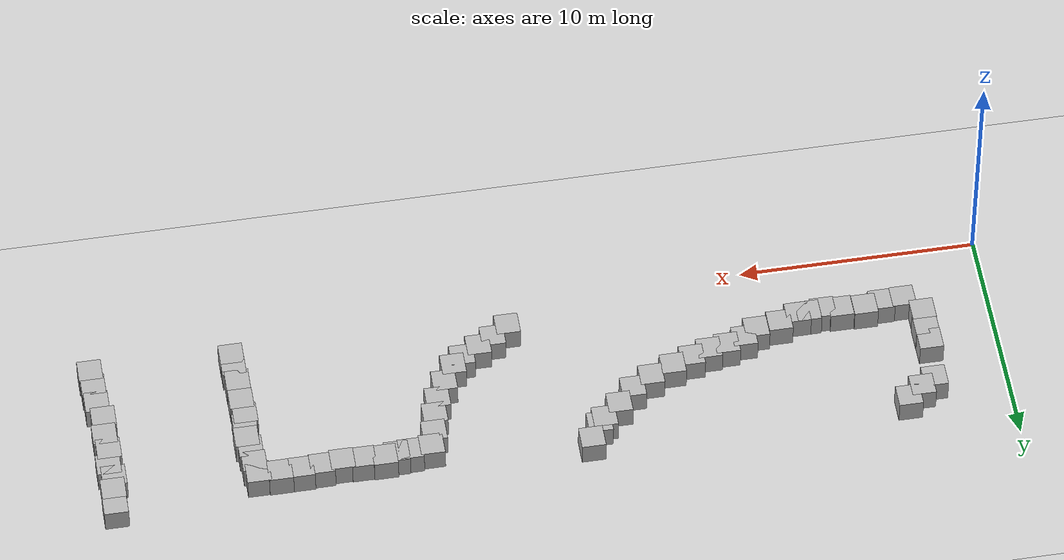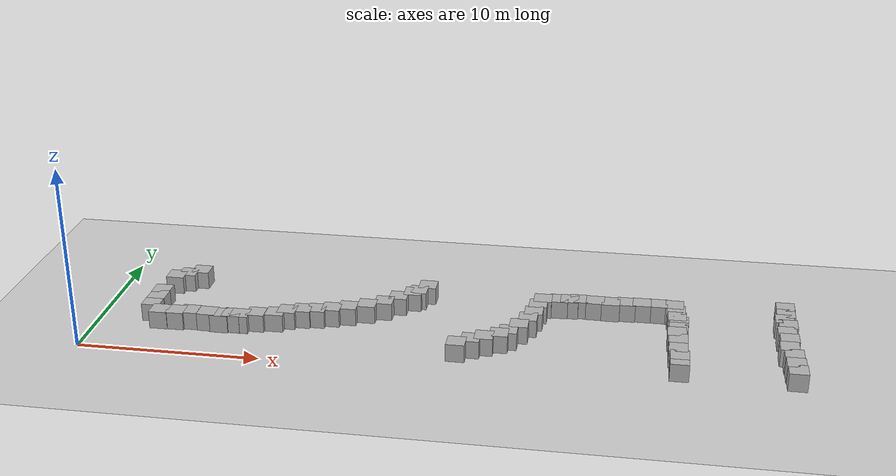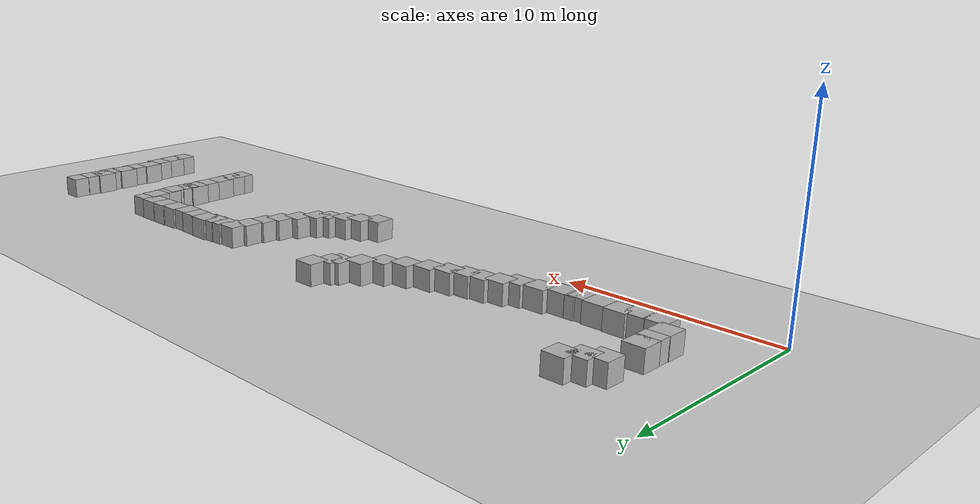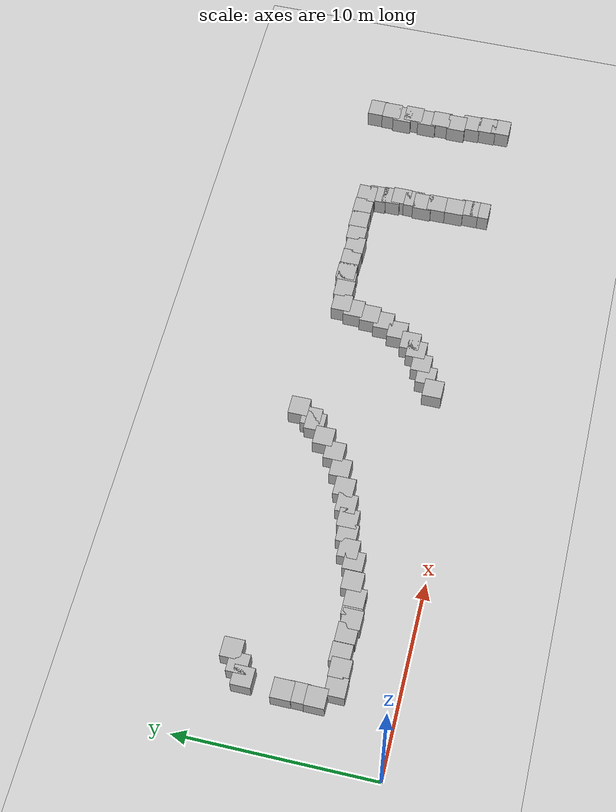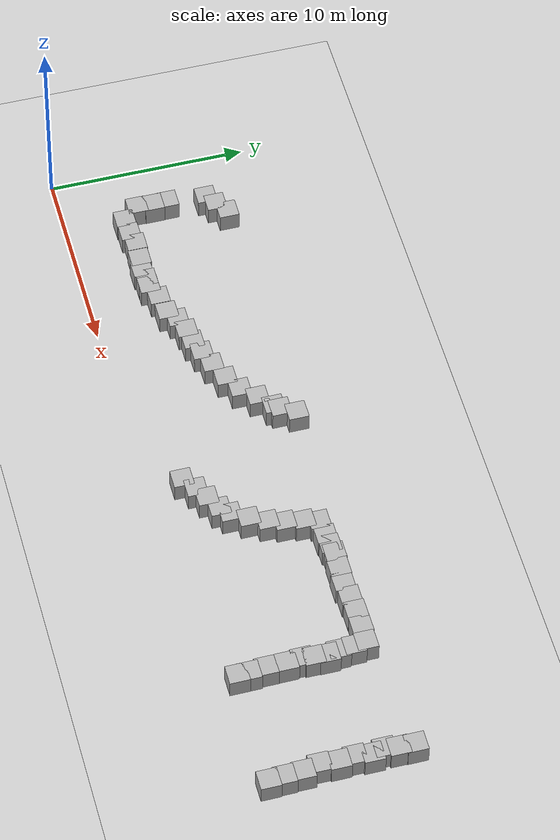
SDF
<sdf version="1.10">
 <world name="empty">
  <model name="ground_plane">
   <static>true</static>
   <link name="link">
    <collision name="collision">
     <geometry><plane><normal>0 0 1</normal><size>100 100</size></plane></geometry>
    </collision>
    <visual name="visual">
     <geometry><plane><normal>0 0 1</normal><size>100 100</size></plane></geometry>
     <material>
      <ambient>0.800000012 0.800000012 0.800000012 1</ambient>
      <diffuse>0.800000012 0.800000012 0.800000012 1</diffuse>
      <specular>0.800000012 0.800000012 0.800000012 1</specular>
     </material>
    </visual>
    <inertial>
     <mass>1</mass>
     <inertia><ixx>1</ixx><ixy>0</ixy><ixz>0</ixz><iyy>1</iyy><iyz>0</iyz><izz>1</izz></inertia>
    </inertial>
   </link>
  </model>
  <model name="box_7_1">
   <pose>2.9451916872459045 3.7643464646409432 0.5 0 0 0</pose>
   <link name="box_link">
    <inertial>
     <inertia><ixx>0.16666</ixx><ixy>0</ixy><ixz>0</ixz><iyy>0.16666</iyy><iyz>0</iyz><izz>0.16666</izz></inertia>
     <mass>1</mass>
    </inertial>
    <collision name="box_collision"><geometry><box><size>1 1 1</size></box></geometry></collision>
    <visual name="box_visual">
     <geometry><box><size>1 1 1</size></box></geometry>
     <material>
      <ambient>0.300000012 0.300000012 0.300000012 1</ambient>
      <diffuse>0.699999988 0.699999988 0.699999988 1</diffuse>
      <specular>1 1 1 1</specular>
     </material>
    </visual>
   </link>
   <static>false</static>
  </model>
  <model name="box_7_2">
   <pose>2.965733301422552 4.6017455559055556 0.5 0 0 0</pose>
   <link name="box_link">
    <inertial>
     <inertia><ixx>0.16666</ixx><ixy>0</ixy><ixz>0</ixz><iyy>0.16666</iyy><iyz>0</iyz><izz>0.16666</izz></inertia>
     <mass>1</mass>
    </inertial>
    <collision name="box_collision"><geometry><box><size>1 1 1</size></box></geometry></collision>
    <visual name="box_visual">
     <geometry><box><size>1 1 1</size></box></geometry>
     <material>
      <ambient>0.300000012 0.300000012 0.300000012 1</ambient>
      <diffuse>0.699999988 0.699999988 0.699999988 1</diffuse>
      <specular>1 1 1 1</specular>
     </material>
    </visual>
   </link>
   <static>false</static>
  </model>
  <model name="box_7_3">
   <pose>2.9526592685858302 5.3668695491442442 0.5 0 0 0</pose>
   <link name="box_link">
    <inertial>
     <inertia><ixx>0.16666</ixx><ixy>0</ixy><ixz>0</ixz><iyy>0.16666</iyy><iyz>0</iyz><izz>0.16666</izz></inertia>
     <mass>1</mass>
    </inertial>
    <collision name="box_collision"><geometry><box><size>1 1 1</size></box></geometry></collision>
    <visual name="box_visual">
     <geometry><box><size>1 1 1</size></box></geometry>
     <material>
      <ambient>0.300000012 0.300000012 0.300000012 1</ambient>
      <diffuse>0.699999988 0.699999988 0.699999988 1</diffuse>
      <specular>1 1 1 1</specular>
     </material>
    </visual>
   </link>
   <static>false</static>
  </model>
  <model name="box_7_94">
   <pose>4.3659326780835501 8.1476697915858693 0.5 0 0 0</pose>
   <link name="box_link">
    <inertial>
     <inertia><ixx>0.16666</ixx><ixy>0</ixy><ixz>0</ixz><iyy>0.16666</iyy><iyz>0</iyz><izz>0.16666</izz></inertia>
     <mass>1</mass>
    </inertial>
    <collision name="box_collision"><geometry><box><size>1 1 1</size></box></geometry></collision>
    <visual name="box_visual">
     <geometry><box><size>1 1 1</size></box></geometry>
     <material>
      <ambient>0.300000012 0.300000012 0.300000012 1</ambient>
      <diffuse>0.699999988 0.699999988 0.699999988 1</diffuse>
      <specular>1 1 1 1</specular>
     </material>
    </visual>
   </link>
   <static>false</static>
  </model>
  <model name="box_7_95">
   <pose>3.7270725030914456 7.6885849794221492 0.5 0 0 0</pose>
   <link name="box_link">
    <inertial>
     <inertia><ixx>0.16666</ixx><ixy>0</ixy><ixz>0</ixz><iyy>0.16666</iyy><iyz>0</iyz><izz>0.16666</izz></inertia>
     <mass>1</mass>
    </inertial>
    <collision name="box_collision"><geometry><box><size>1 1 1</size></box></geometry></collision>
    <visual name="box_visual">
     <geometry><box><size>1 1 1</size></box></geometry>
     <material>
      <ambient>0.300000012 0.300000012 0.300000012 1</ambient>
      <diffuse>0.699999988 0.699999988 0.699999988 1</diffuse>
      <specular>1 1 1 1</specular>
     </material>
    </visual>
   </link>
   <static>false</static>
  </model>
  <model name="box_7_96">
   <pose>3.1422916219437074 7.3198556125772312 0.5 0 0 0</pose>
   <link name="box_link">
    <inertial>
     <inertia><ixx>0.16666</ixx><ixy>0</ixy><ixz>0</ixz><iyy>0.16666</iyy><iyz>0</iyz><izz>0.16666</izz></inertia>
     <mass>1</mass>
    </inertial>
    <collision name="box_collision"><geometry><box><size>1 1 1</size></box></geometry></collision>
    <visual name="box_visual">
     <geometry><box><size>1 1 1</size></box></geometry>
     <material>
      <ambient>0.300000012 0.300000012 0.300000012 1</ambient>
      <diffuse>0.699999988 0.699999988 0.699999988 1</diffuse>
      <specular>1 1 1 1</specular>
     </material>
    </visual>
   </link>
   <static>false</static>
  </model>
  <model name="box_7_97">
   <pose>3.6419311580413307 2.9611827537690782 0.5 0 0 0</pose>
   <link name="box_link">
    <inertial>
     <inertia><ixx>0.16666</ixx><ixy>0</ixy><ixz>0</ixz><iyy>0.16666</iyy><iyz>0</iyz><izz>0.16666</izz></inertia>
     <mass>1</mass>
    </inertial>
    <collision name="box_collision"><geometry><box><size>1 1 1</size></box></geometry></collision>
    <visual name="box_visual">
     <geometry><box><size>1 1 1</size></box></geometry>
     <material>
      <ambient>0.300000012 0.300000012 0.300000012 1</ambient>
      <diffuse>0.699999988 0.699999988 0.699999988 1</diffuse>
      <specular>1 1 1 1</specular>
     </material>
    </visual>
   </link>
   <static>false</static>
  </model>
  <model name="box_7_98">
   <pose>4.5539337820052861 2.9957458890182149 0.5 0 0 0</pose>
   <link name="box_link">
    <inertial>
     <inertia><ixx>0.16666</ixx><ixy>0</ixy><ixz>0</ixz><iyy>0.16666</iyy><iyz>0</iyz><izz>0.16666</izz></inertia>
     <mass>1</mass>
    </inertial>
    <collision name="box_collision"><geometry><box><size>1 1 1</size></box></geometry></collision>
    <visual name="box_visual">
     <geometry><box><size>1 1 1</size></box></geometry>
     <material>
      <ambient>0.300000012 0.300000012 0.300000012 1</ambient>
      <diffuse>0.699999988 0.699999988 0.699999988 1</diffuse>
      <specular>1 1 1 1</specular>
     </material>
    </visual>
   </link>
   <static>false</static>
  </model>
  <model name="box_7_99">
   <pose>5.2911898608731125 3.1301353618408641 0.5 0 0 0</pose>
   <link name="box_link">
    <inertial>
     <inertia><ixx>0.16666</ixx><ixy>0</ixy><ixz>0</ixz><iyy>0.16666</iyy><iyz>0</iyz><izz>0.16666</izz></inertia>
     <mass>1</mass>
    </inertial>
    <collision name="box_collision"><geometry><box><size>1 1 1</size></box></geometry></collision>
    <visual name="box_visual">
     <geometry><box><size>1 1 1</size></box></geometry>
     <material>
      <ambient>0.300000012 0.300000012 0.300000012 1</ambient>
      <diffuse>0.699999988 0.699999988 0.699999988 1</diffuse>
      <specular>1 1 1 1</specular>
     </material>
    </visual>
   </link>
   <static>false</static>
  </model>
  <model name="box_7_100">
   <pose>6.303454348619991 3.0903157442481266 0.5 0 0 0</pose>
   <link name="box_link">
    <inertial>
     <inertia><ixx>0.16666</ixx><ixy>0</ixy><ixz>0</ixz><iyy>0.16666</iyy><iyz>0</iyz><izz>0.16666</izz></inertia>
     <mass>1</mass>
    </inertial>
    <collision name="box_collision"><geometry><box><size>1 1 1</size></box></geometry></collision>
    <visual name="box_visual">
     <geometry><box><size>1 1 1</size></box></geometry>
     <material>
      <ambient>0.300000012 0.300000012 0.300000012 1</ambient>
      <diffuse>0.699999988 0.699999988 0.699999988 1</diffuse>
      <specular>1 1 1 1</specular>
     </material>
    </visual>
   </link>
   <static>false</static>
  </model>
  <model name="box_7_101">
   <pose>7.045741161222594 3.0222316102239555 0.5 0 0 0</pose>
   <link name="box_link">
    <inertial>
     <inertia><ixx>0.16666</ixx><ixy>0</ixy><ixz>0</ixz><iyy>0.16666</iyy><iyz>0</iyz><izz>0.16666</izz></inertia>
     <mass>1</mass>
    </inertial>
    <collision name="box_collision"><geometry><box><size>1 1 1</size></box></geometry></collision>
    <visual name="box_visual">
     <geometry><box><size>1 1 1</size></box></geometry>
     <material>
      <ambient>0.300000012 0.300000012 0.300000012 1</ambient>
      <diffuse>0.699999988 0.699999988 0.699999988 1</diffuse>
      <specular>1 1 1 1</specular>
     </material>
    </visual>
   </link>
   <static>false</static>
  </model>
  <model name="box_7_305">
   <pose>37.440460424222252 7.6366148769680926 0.5 0 0 0</pose>
   <link name="box_link">
    <inertial>
     <inertia><ixx>0.16666</ixx><ixy>0</ixy><ixz>0</ixz><iyy>0.16666</iyy><iyz>0</iyz><izz>0.16666</izz></inertia>
     <mass>1</mass>
    </inertial>
    <collision name="box_collision"><geometry><box><size>1 1 1</size></box></geometry></collision>
    <visual name="box_visual">
     <geometry><box><size>1 1 1</size></box></geometry>
     <material>
      <ambient>0.300000012 0.300000012 0.300000012 1</ambient>
      <diffuse>0.699999988 0.699999988 0.699999988 1</diffuse>
      <specular>1 1 1 1</specular>
     </material>
    </visual>
   </link>
   <static>false</static>
  </model>
  <model name="box_7_306">
   <pose>37.4631118531262 8.4384913370086299 0.5 0 0 0</pose>
   <link name="box_link">
    <inertial>
     <inertia><ixx>0.16666</ixx><ixy>0</ixy><ixz>0</ixz><iyy>0.16666</iyy><iyz>0</iyz><izz>0.16666</izz></inertia>
     <mass>1</mass>
    </inertial>
    <collision name="box_collision"><geometry><box><size>1 1 1</size></box></geometry></collision>
    <visual name="box_visual">
     <geometry><box><size>1 1 1</size></box></geometry>
     <material>
      <ambient>0.300000012 0.300000012 0.300000012 1</ambient>
      <diffuse>0.699999988 0.699999988 0.699999988 1</diffuse>
      <specular>1 1 1 1</specular>
     </material>
    </visual>
   </link>
   <static>false</static>
  </model>
  <model name="box_7_395">
   <pose>17.664533526017753 8.1815986023374911 0.5 0 0 0</pose>
   <link name="box_link">
    <inertial>
     <inertia><ixx>0.16666</ixx><ixy>0</ixy><ixz>0</ixz><iyy>0.16666</iyy><iyz>0</iyz><izz>0.16666</izz></inertia>
     <mass>1</mass>
    </inertial>
    <collision name="box_collision"><geometry><box><size>1 1 1</size></box></geometry></collision>
    <visual name="box_visual">
     <geometry><box><size>1 1 1</size></box></geometry>
     <material>
      <ambient>0.300000012 0.300000012 0.300000012 1</ambient>
      <diffuse>0.699999988 0.699999988 0.699999988 1</diffuse>
      <specular>1 1 1 1</specular>
     </material>
    </visual>
   </link>
   <static>false</static>
  </model>
  <model name="box_7_396">
   <pose>8.1343607769292703 3.1035054262866613 0.5 0 0 0</pose>
   <link name="box_link">
    <inertial>
     <inertia><ixx>0.16666</ixx><ixy>0</ixy><ixz>0</ixz><iyy>0.16666</iyy><iyz>0</iyz><izz>0.16666</izz></inertia>
     <mass>1</mass>
    </inertial>
    <collision name="box_collision"><geometry><box><size>1 1 1</size></box></geometry></collision>
    <visual name="box_visual">
     <geometry><box><size>1 1 1</size></box></geometry>
     <material>
      <ambient>0.300000012 0.300000012 0.300000012 1</ambient>
      <diffuse>0.699999988 0.699999988 0.699999988 1</diffuse>
      <specular>1 1 1 1</specular>
     </material>
    </visual>
   </link>
   <static>false</static>
  </model>
  <model name="box_7_397">
   <pose>7.6828157197887954 3.0976413553826454 0.5 0 0 0</pose>
   <link name="box_link">
    <inertial>
     <inertia><ixx>0.16666</ixx><ixy>0</ixy><ixz>0</ixz><iyy>0.16666</iyy><iyz>0</iyz><izz>0.16666</izz></inertia>
     <mass>1</mass>
    </inertial>
    <collision name="box_collision"><geometry><box><size>1 1 1</size></box></geometry></collision>
    <visual name="box_visual">
     <geometry><box><size>1 1 1</size></box></geometry>
     <material>
      <ambient>0.300000012 0.300000012 0.300000012 1</ambient>
      <diffuse>0.699999988 0.699999988 0.699999988 1</diffuse>
      <specular>1 1 1 1</specular>
     </material>
    </visual>
   </link>
   <static>false</static>
  </model>
  <model name="box_7_398">
   <pose>8.9569749558699741 3.4073686784278951 0.5 0 0 0</pose>
   <link name="box_link">
    <inertial>
     <inertia><ixx>0.16666</ixx><ixy>0</ixy><ixz>0</ixz><iyy>0.16666</iyy><iyz>0</iyz><izz>0.16666</izz></inertia>
     <mass>1</mass>
    </inertial>
    <collision name="box_collision"><geometry><box><size>1 1 1</size></box></geometry></collision>
    <visual name="box_visual">
     <geometry><box><size>1 1 1</size></box></geometry>
     <material>
      <ambient>0.300000012 0.300000012 0.300000012 1</ambient>
      <diffuse>0.699999988 0.699999988 0.699999988 1</diffuse>
      <specular>1 1 1 1</specular>
     </material>
    </visual>
   </link>
   <static>false</static>
  </model>
  <model name="box_7_399">
   <pose>9.9765563699773931 3.5831603559456653 0.5 0 0 0</pose>
   <link name="box_link">
    <inertial>
     <inertia><ixx>0.16666</ixx><ixy>0</ixy><ixz>0</ixz><iyy>0.16666</iyy><iyz>0</iyz><izz>0.16666</izz></inertia>
     <mass>1</mass>
    </inertial>
    <collision name="box_collision"><geometry><box><size>1 1 1</size></box></geometry></collision>
    <visual name="box_visual">
     <geometry><box><size>1 1 1</size></box></geometry>
     <material>
      <ambient>0.300000012 0.300000012 0.300000012 1</ambient>
      <diffuse>0.699999988 0.699999988 0.699999988 1</diffuse>
      <specular>1 1 1 1</specular>
     </material>
    </visual>
   </link>
   <static>false</static>
  </model>
  <model name="box_7_400">
   <pose>10.552735566277573 3.970929438802866 0.5 0 0 0</pose>
   <link name="box_link">
    <inertial>
     <inertia><ixx>0.16666</ixx><ixy>0</ixy><ixz>0</ixz><iyy>0.16666</iyy><iyz>0</iyz><izz>0.16666</izz></inertia>
     <mass>1</mass>
    </inertial>
    <collision name="box_collision"><geometry><box><size>1 1 1</size></box></geometry></collision>
    <visual name="box_visual">
     <geometry><box><size>1 1 1</size></box></geometry>
     <material>
      <ambient>0.300000012 0.300000012 0.300000012 1</ambient>
      <diffuse>0.699999988 0.699999988 0.699999988 1</diffuse>
      <specular>1 1 1 1</specular>
     </material>
    </visual>
   </link>
   <static>false</static>
  </model>
  <model name="box_7_401">
   <pose>11.334116970539473 4.2276456298445098 0.5 0 0 0</pose>
   <link name="box_link">
    <inertial>
     <inertia><ixx>0.16666</ixx><ixy>0</ixy><ixz>0</ixz><iyy>0.16666</iyy><iyz>0</iyz><izz>0.16666</izz></inertia>
     <mass>1</mass>
    </inertial>
    <collision name="box_collision"><geometry><box><size>1 1 1</size></box></geometry></collision>
    <visual name="box_visual">
     <geometry><box><size>1 1 1</size></box></geometry>
     <material>
      <ambient>0.300000012 0.300000012 0.300000012 1</ambient>
      <diffuse>0.699999988 0.699999988 0.699999988 1</diffuse>
      <specular>1 1 1 1</specular>
     </material>
    </visual>
   </link>
   <static>false</static>
  </model>
  <model name="box_7_402">
   <pose>12.112384707012668 4.3622336342814023 0.5 0 0 0</pose>
   <link name="box_link">
    <inertial>
     <inertia><ixx>0.16666</ixx><ixy>0</ixy><ixz>0</ixz><iyy>0.16666</iyy><iyz>0</iyz><izz>0.16666</izz></inertia>
     <mass>1</mass>
    </inertial>
    <collision name="box_collision"><geometry><box><size>1 1 1</size></box></geometry></collision>
    <visual name="box_visual">
     <geometry><box><size>1 1 1</size></box></geometry>
     <material>
      <ambient>0.300000012 0.300000012 0.300000012 1</ambient>
      <diffuse>0.699999988 0.699999988 0.699999988 1</diffuse>
      <specular>1 1 1 1</specular>
     </material>
    </visual>
   </link>
   <static>false</static>
  </model>
  <model name="box_7_403">
   <pose>12.882261820251191 4.6211170989841879 0.5 0 0 0</pose>
   <link name="box_link">
    <inertial>
     <inertia><ixx>0.16666</ixx><ixy>0</ixy><ixz>0</ixz><iyy>0.16666</iyy><iyz>0</iyz><izz>0.16666</izz></inertia>
     <mass>1</mass>
    </inertial>
    <collision name="box_collision"><geometry><box><size>1 1 1</size></box></geometry></collision>
    <visual name="box_visual">
     <geometry><box><size>1 1 1</size></box></geometry>
     <material>
      <ambient>0.300000012 0.300000012 0.300000012 1</ambient>
      <diffuse>0.699999988 0.699999988 0.699999988 1</diffuse>
      <specular>1 1 1 1</specular>
     </material>
    </visual>
   </link>
   <static>false</static>
  </model>
  <model name="box_7_404">
   <pose>13.738908531443585 4.9264547906110696 0.5 0 0 0</pose>
   <link name="box_link">
    <inertial>
     <inertia><ixx>0.16666</ixx><ixy>0</ixy><ixz>0</ixz><iyy>0.16666</iyy><iyz>0</iyz><izz>0.16666</izz></inertia>
     <mass>1</mass>
    </inertial>
    <collision name="box_collision"><geometry><box><size>1 1 1</size></box></geometry></collision>
    <visual name="box_visual">
     <geometry><box><size>1 1 1</size></box></geometry>
     <material>
      <ambient>0.300000012 0.300000012 0.300000012 1</ambient>
      <diffuse>0.699999988 0.699999988 0.699999988 1</diffuse>
      <specular>1 1 1 1</specular>
     </material>
    </visual>
   </link>
   <static>false</static>
  </model>
  <model name="box_7_405">
   <pose>14.717224208026501 5.3482656448340844 0.5 0 0 0</pose>
   <link name="box_link">
    <inertial>
     <inertia><ixx>0.16666</ixx><ixy>0</ixy><ixz>0</ixz><iyy>0.16666</iyy><iyz>0</iyz><izz>0.16666</izz></inertia>
     <mass>1</mass>
    </inertial>
    <collision name="box_collision"><geometry><box><size>1 1 1</size></box></geometry></collision>
    <visual name="box_visual">
     <geometry><box><size>1 1 1</size></box></geometry>
     <material>
      <ambient>0.300000012 0.300000012 0.300000012 1</ambient>
      <diffuse>0.699999988 0.699999988 0.699999988 1</diffuse>
      <specular>1 1 1 1</specular>
     </material>
    </visual>
   </link>
   <static>false</static>
  </model>
  <model name="box_7_406">
   <pose>15.572953273002637 5.8556671956200219 0.5 0 0 0</pose>
   <link name="box_link">
    <inertial>
     <inertia><ixx>0.16666</ixx><ixy>0</ixy><ixz>0</ixz><iyy>0.16666</iyy><iyz>0</iyz><izz>0.16666</izz></inertia>
     <mass>1</mass>
    </inertial>
    <collision name="box_collision"><geometry><box><size>1 1 1</size></box></geometry></collision>
    <visual name="box_visual">
     <geometry><box><size>1 1 1</size></box></geometry>
     <material>
      <ambient>0.300000012 0.300000012 0.300000012 1</ambient>
      <diffuse>0.699999988 0.699999988 0.699999988 1</diffuse>
      <specular>1 1 1 1</specular>
     </material>
    </visual>
   </link>
   <static>false</static>
  </model>
  <model name="box_7_407">
   <pose>16.264659554783368 6.5701987215159363 0.5 0 0 0</pose>
   <link name="box_link">
    <inertial>
     <inertia><ixx>0.16666</ixx><ixy>0</ixy><ixz>0</ixz><iyy>0.16666</iyy><iyz>0</iyz><izz>0.16666</izz></inertia>
     <mass>1</mass>
    </inertial>
    <collision name="box_collision"><geometry><box><size>1 1 1</size></box></geometry></collision>
    <visual name="box_visual">
     <geometry><box><size>1 1 1</size></box></geometry>
     <material>
      <ambient>0.300000012 0.300000012 0.300000012 1</ambient>
      <diffuse>0.699999988 0.699999988 0.699999988 1</diffuse>
      <specular>1 1 1 1</specular>
     </material>
    </visual>
   </link>
   <static>false</static>
  </model>
  <model name="box_7_408">
   <pose>16.988810794996908 7.1974962581197275 0.5 0 0 0</pose>
   <link name="box_link">
    <inertial>
     <inertia><ixx>0.16666</ixx><ixy>0</ixy><ixz>0</ixz><iyy>0.16666</iyy><iyz>0</iyz><izz>0.16666</izz></inertia>
     <mass>1</mass>
    </inertial>
    <collision name="box_collision"><geometry><box><size>1 1 1</size></box></geometry></collision>
    <visual name="box_visual">
     <geometry><box><size>1 1 1</size></box></geometry>
     <material>
      <ambient>0.300000012 0.300000012 0.300000012 1</ambient>
      <diffuse>0.699999988 0.699999988 0.699999988 1</diffuse>
      <specular>1 1 1 1</specular>
     </material>
    </visual>
   </link>
   <static>false</static>
  </model>
  <model name="box_7_409">
   <pose>17.23409692357183 7.4534245880687084 0.5 0 0 0</pose>
   <link name="box_link">
    <inertial>
     <inertia><ixx>0.16666</ixx><ixy>0</ixy><ixz>0</ixz><iyy>0.16666</iyy><iyz>0</iyz><izz>0.16666</izz></inertia>
     <mass>1</mass>
    </inertial>
    <collision name="box_collision"><geometry><box><size>1 1 1</size></box></geometry></collision>
    <visual name="box_visual">
     <geometry><box><size>1 1 1</size></box></geometry>
     <material>
      <ambient>0.300000012 0.300000012 0.300000012 1</ambient>
      <diffuse>0.699999988 0.699999988 0.699999988 1</diffuse>
      <specular>1 1 1 1</specular>
     </material>
    </visual>
   </link>
   <static>false</static>
  </model>
  <model name="box_7_427">
   <pose>20.199684678097125 1.7672901390244018 0.5 0 0 0</pose>
   <link name="box_link">
    <inertial>
     <inertia><ixx>0.16666</ixx><ixy>0</ixy><ixz>0</ixz><iyy>0.16666</iyy><iyz>0</iyz><izz>0.16666</izz></inertia>
     <mass>1</mass>
    </inertial>
    <collision name="box_collision"><geometry><box><size>1 1 1</size></box></geometry></collision>
    <visual name="box_visual">
     <geometry><box><size>1 1 1</size></box></geometry>
     <material>
      <ambient>0.300000012 0.300000012 0.300000012 1</ambient>
      <diffuse>0.699999988 0.699999988 0.699999988 1</diffuse>
      <specular>1 1 1 1</specular>
     </material>
    </visual>
   </link>
   <static>false</static>
  </model>
  <model name="box_7_428">
   <pose>20.894623670826967 2.2734121690811806 0.5 0 0 0</pose>
   <link name="box_link">
    <inertial>
     <inertia><ixx>0.16666</ixx><ixy>0</ixy><ixz>0</ixz><iyy>0.16666</iyy><iyz>0</iyz><izz>0.16666</izz></inertia>
     <mass>1</mass>
    </inertial>
    <collision name="box_collision"><geometry><box><size>1 1 1</size></box></geometry></collision>
    <visual name="box_visual">
     <geometry><box><size>1 1 1</size></box></geometry>
     <material>
      <ambient>0.300000012 0.300000012 0.300000012 1</ambient>
      <diffuse>0.699999988 0.699999988 0.699999988 1</diffuse>
      <specular>1 1 1 1</specular>
     </material>
    </visual>
   </link>
   <static>false</static>
  </model>
  <model name="box_7_429">
   <pose>21.556352829939438 2.6529421693887798 0.5 0 0 0</pose>
   <link name="box_link">
    <inertial>
     <inertia><ixx>0.16666</ixx><ixy>0</ixy><ixz>0</ixz><iyy>0.16666</iyy><iyz>0</iyz><izz>0.16666</izz></inertia>
     <mass>1</mass>
    </inertial>
    <collision name="box_collision"><geometry><box><size>1 1 1</size></box></geometry></collision>
    <visual name="box_visual">
     <geometry><box><size>1 1 1</size></box></geometry>
     <material>
      <ambient>0.300000012 0.300000012 0.300000012 1</ambient>
      <diffuse>0.699999988 0.699999988 0.699999988 1</diffuse>
      <specular>1 1 1 1</specular>
     </material>
    </visual>
   </link>
   <static>false</static>
  </model>
  <model name="box_7_430">
   <pose>22.3016997303666 3.0753167565205635 0.5 0 0 0</pose>
   <link name="box_link">
    <inertial>
     <inertia><ixx>0.16666</ixx><ixy>0</ixy><ixz>0</ixz><iyy>0.16666</iyy><iyz>0</iyz><izz>0.16666</izz></inertia>
     <mass>1</mass>
    </inertial>
    <collision name="box_collision"><geometry><box><size>1 1 1</size></box></geometry></collision>
    <visual name="box_visual">
     <geometry><box><size>1 1 1</size></box></geometry>
     <material>
      <ambient>0.300000012 0.300000012 0.300000012 1</ambient>
      <diffuse>0.699999988 0.699999988 0.699999988 1</diffuse>
      <specular>1 1 1 1</specular>
     </material>
    </visual>
   </link>
   <static>false</static>
  </model>
  <model name="box_7_431">
   <pose>22.743677408761819 3.4908802564331225 0.5 0 0 0</pose>
   <link name="box_link">
    <inertial>
     <inertia><ixx>0.16666</ixx><ixy>0</ixy><ixz>0</ixz><iyy>0.16666</iyy><iyz>0</iyz><izz>0.16666</izz></inertia>
     <mass>1</mass>
    </inertial>
    <collision name="box_collision"><geometry><box><size>1 1 1</size></box></geometry></collision>
    <visual name="box_visual">
     <geometry><box><size>1 1 1</size></box></geometry>
     <material>
      <ambient>0.300000012 0.300000012 0.300000012 1</ambient>
      <diffuse>0.699999988 0.699999988 0.699999988 1</diffuse>
      <specular>1 1 1 1</specular>
     </material>
    </visual>
   </link>
   <static>false</static>
  </model>
  <model name="box_7_432">
   <pose>23.238756854556129 4.2814625628895495 0.5 0 0 0</pose>
   <link name="box_link">
    <inertial>
     <inertia><ixx>0.16666</ixx><ixy>0</ixy><ixz>0</ixz><iyy>0.16666</iyy><iyz>0</iyz><izz>0.16666</izz></inertia>
     <mass>1</mass>
    </inertial>
    <collision name="box_collision"><geometry><box><size>1 1 1</size></box></geometry></collision>
    <visual name="box_visual">
     <geometry><box><size>1 1 1</size></box></geometry>
     <material>
      <ambient>0.300000012 0.300000012 0.300000012 1</ambient>
      <diffuse>0.699999988 0.699999988 0.699999988 1</diffuse>
      <specular>1 1 1 1</specular>
     </material>
    </visual>
   </link>
   <static>false</static>
  </model>
  <model name="box_7_433">
   <pose>23.642774890461201 5.1058758698945681 0.5 0 0 0</pose>
   <link name="box_link">
    <inertial>
     <inertia><ixx>0.16666</ixx><ixy>0</ixy><ixz>0</ixz><iyy>0.16666</iyy><iyz>0</iyz><izz>0.16666</izz></inertia>
     <mass>1</mass>
    </inertial>
    <collision name="box_collision"><geometry><box><size>1 1 1</size></box></geometry></collision>
    <visual name="box_visual">
     <geometry><box><size>1 1 1</size></box></geometry>
     <material>
      <ambient>0.300000012 0.300000012 0.300000012 1</ambient>
      <diffuse>0.699999988 0.699999988 0.699999988 1</diffuse>
      <specular>1 1 1 1</specular>
     </material>
    </visual>
   </link>
   <static>false</static>
  </model>
  <model name="box_7_434">
   <pose>23.883074049152135 5.8877770233360005 0.5 0 0 0</pose>
   <link name="box_link">
    <inertial>
     <inertia><ixx>0.16666</ixx><ixy>0</ixy><ixz>0</ixz><iyy>0.16666</iyy><iyz>0</iyz><izz>0.16666</izz></inertia>
     <mass>1</mass>
    </inertial>
    <collision name="box_collision"><geometry><box><size>1 1 1</size></box></geometry></collision>
    <visual name="box_visual">
     <geometry><box><size>1 1 1</size></box></geometry>
     <material>
      <ambient>0.300000012 0.300000012 0.300000012 1</ambient>
      <diffuse>0.699999988 0.699999988 0.699999988 1</diffuse>
      <specular>1 1 1 1</specular>
     </material>
    </visual>
   </link>
   <static>false</static>
  </model>
  <model name="box_7_435">
   <pose>24.041833040851692 6.7900471700155496 0.5 0 0 0</pose>
   <link name="box_link">
    <inertial>
     <inertia><ixx>0.16666</ixx><ixy>0</ixy><ixz>0</ixz><iyy>0.16666</iyy><iyz>0</iyz><izz>0.16666</izz></inertia>
     <mass>1</mass>
    </inertial>
    <collision name="box_collision"><geometry><box><size>1 1 1</size></box></geometry></collision>
    <visual name="box_visual">
     <geometry><box><size>1 1 1</size></box></geometry>
     <material>
      <ambient>0.300000012 0.300000012 0.300000012 1</ambient>
      <diffuse>0.699999988 0.699999988 0.699999988 1</diffuse>
      <specular>1 1 1 1</specular>
     </material>
    </visual>
   </link>
   <static>false</static>
  </model>
  <model name="box_7_436">
   <pose>24.244359623911826 7.4848904556025779 0.5 0 0 0</pose>
   <link name="box_link">
    <inertial>
     <inertia><ixx>0.16666</ixx><ixy>0</ixy><ixz>0</ixz><iyy>0.16666</iyy><iyz>0</iyz><izz>0.16666</izz></inertia>
     <mass>1</mass>
    </inertial>
    <collision name="box_collision"><geometry><box><size>1 1 1</size></box></geometry></collision>
    <visual name="box_visual">
     <geometry><box><size>1 1 1</size></box></geometry>
     <material>
      <ambient>0.300000012 0.300000012 0.300000012 1</ambient>
      <diffuse>0.699999988 0.699999988 0.699999988 1</diffuse>
      <specular>1 1 1 1</specular>
     </material>
    </visual>
   </link>
   <static>false</static>
  </model>
  <model name="box_7_437">
   <pose>25.135313976050675 7.5753298337541439 0.5 0 0 0</pose>
   <link name="box_link">
    <inertial>
     <inertia><ixx>0.16666</ixx><ixy>0</ixy><ixz>0</ixz><iyy>0.16666</iyy><iyz>0</iyz><izz>0.16666</izz></inertia>
     <mass>1</mass>
    </inertial>
    <collision name="box_collision"><geometry><box><size>1 1 1</size></box></geometry></collision>
    <visual name="box_visual">
     <geometry><box><size>1 1 1</size></box></geometry>
     <material>
      <ambient>0.300000012 0.300000012 0.300000012 1</ambient>
      <diffuse>0.699999988 0.699999988 0.699999988 1</diffuse>
      <specular>1 1 1 1</specular>
     </material>
    </visual>
   </link>
   <static>false</static>
  </model>
  <model name="box_7_438">
   <pose>26.229892713001782 7.7095757859094904 0.5 0 0 0</pose>
   <link name="box_link">
    <inertial>
     <inertia><ixx>0.16666</ixx><ixy>0</ixy><ixz>0</ixz><iyy>0.16666</iyy><iyz>0</iyz><izz>0.16666</izz></inertia>
     <mass>1</mass>
    </inertial>
    <collision name="box_collision"><geometry><box><size>1 1 1</size></box></geometry></collision>
    <visual name="box_visual">
     <geometry><box><size>1 1 1</size></box></geometry>
     <material>
      <ambient>0.300000012 0.300000012 0.300000012 1</ambient>
      <diffuse>0.699999988 0.699999988 0.699999988 1</diffuse>
      <specular>1 1 1 1</specular>
     </material>
    </visual>
   </link>
   <static>false</static>
  </model>
  <model name="box_7_439">
   <pose>25.711330983790464 7.6189697231081634 0.5 0 0 0</pose>
   <link name="box_link">
    <inertial>
     <inertia><ixx>0.16666</ixx><ixy>0</ixy><ixz>0</ixz><iyy>0.16666</iyy><iyz>0</iyz><izz>0.16666</izz></inertia>
     <mass>1</mass>
    </inertial>
    <collision name="box_collision"><geometry><box><size>1 1 1</size></box></geometry></collision>
    <visual name="box_visual">
     <geometry><box><size>1 1 1</size></box></geometry>
     <material>
      <ambient>0.300000012 0.300000012 0.300000012 1</ambient>
      <diffuse>0.699999988 0.699999988 0.699999988 1</diffuse>
      <specular>1 1 1 1</specular>
     </material>
    </visual>
   </link>
   <static>false</static>
  </model>
  <model name="box_7_440">
   <pose>27.12558308754625 7.6746806209951597 0.5 0 0 0</pose>
   <link name="box_link">
    <inertial>
     <inertia><ixx>0.16666</ixx><ixy>0</ixy><ixz>0</ixz><iyy>0.16666</iyy><iyz>0</iyz><izz>0.16666</izz></inertia>
     <mass>1</mass>
    </inertial>
    <collision name="box_collision"><geometry><box><size>1 1 1</size></box></geometry></collision>
    <visual name="box_visual">
     <geometry><box><size>1 1 1</size></box></geometry>
     <material>
      <ambient>0.300000012 0.300000012 0.300000012 1</ambient>
      <diffuse>0.699999988 0.699999988 0.699999988 1</diffuse>
      <specular>1 1 1 1</specular>
     </material>
    </visual>
   </link>
   <static>false</static>
  </model>
  <model name="box_7_441">
   <pose>27.986321866583086 7.6451514876259301 0.5 0 0 0</pose>
   <link name="box_link">
    <inertial>
     <inertia><ixx>0.16666</ixx><ixy>0</ixy><ixz>0</ixz><iyy>0.16666</iyy><iyz>0</iyz><izz>0.16666</izz></inertia>
     <mass>1</mass>
    </inertial>
    <collision name="box_collision"><geometry><box><size>1 1 1</size></box></geometry></collision>
    <visual name="box_visual">
     <geometry><box><size>1 1 1</size></box></geometry>
     <material>
      <ambient>0.300000012 0.300000012 0.300000012 1</ambient>
      <diffuse>0.699999988 0.699999988 0.699999988 1</diffuse>
      <specular>1 1 1 1</specular>
     </material>
    </visual>
   </link>
   <static>false</static>
  </model>
  <model name="box_7_442">
   <pose>28.841345938411326 7.7357495191720096 0.5 0 0 0</pose>
   <link name="box_link">
    <inertial>
     <inertia><ixx>0.16666</ixx><ixy>0</ixy><ixz>0</ixz><iyy>0.16666</iyy><iyz>0</iyz><izz>0.16666</izz></inertia>
     <mass>1</mass>
    </inertial>
    <collision name="box_collision"><geometry><box><size>1 1 1</size></box></geometry></collision>
    <visual name="box_visual">
     <geometry><box><size>1 1 1</size></box></geometry>
     <material>
      <ambient>0.300000012 0.300000012 0.300000012 1</ambient>
      <diffuse>0.699999988 0.699999988 0.699999988 1</diffuse>
      <specular>1 1 1 1</specular>
     </material>
    </visual>
   </link>
   <static>false</static>
  </model>
  <model name="box_7_443">
   <pose>29.684696511408887 7.7851869213188332 0.5 0 0 0</pose>
   <link name="box_link">
    <inertial>
     <inertia><ixx>0.16666</ixx><ixy>0</ixy><ixz>0</ixz><iyy>0.16666</iyy><iyz>0</iyz><izz>0.16666</izz></inertia>
     <mass>1</mass>
    </inertial>
    <collision name="box_collision"><geometry><box><size>1 1 1</size></box></geometry></collision>
    <visual name="box_visual">
     <geometry><box><size>1 1 1</size></box></geometry>
     <material>
      <ambient>0.300000012 0.300000012 0.300000012 1</ambient>
      <diffuse>0.699999988 0.699999988 0.699999988 1</diffuse>
      <specular>1 1 1 1</specular>
     </material>
    </visual>
   </link>
   <static>false</static>
  </model>
  <model name="box_7_444">
   <pose>30.580384988662924 7.7939121316047624 0.5 0 0 0</pose>
   <link name="box_link">
    <inertial>
     <inertia><ixx>0.16666</ixx><ixy>0</ixy><ixz>0</ixz><iyy>0.16666</iyy><iyz>0</iyz><izz>0.16666</izz></inertia>
     <mass>1</mass>
    </inertial>
    <collision name="box_collision"><geometry><box><size>1 1 1</size></box></geometry></collision>
    <visual name="box_visual">
     <geometry><box><size>1 1 1</size></box></geometry>
     <material>
      <ambient>0.300000012 0.300000012 0.300000012 1</ambient>
      <diffuse>0.699999988 0.699999988 0.699999988 1</diffuse>
      <specular>1 1 1 1</specular>
     </material>
    </visual>
   </link>
   <static>false</static>
  </model>
  <model name="box_7_445">
   <pose>31.47607724149314 7.7648302805004406 0.5 0 0 0</pose>
   <link name="box_link">
    <inertial>
     <inertia><ixx>0.16666</ixx><ixy>0</ixy><ixz>0</ixz><iyy>0.16666</iyy><iyz>0</iyz><izz>0.16666</izz></inertia>
     <mass>1</mass>
    </inertial>
    <collision name="box_collision"><geometry><box><size>1 1 1</size></box></geometry></collision>
    <visual name="box_visual">
     <geometry><box><size>1 1 1</size></box></geometry>
     <material>
      <ambient>0.300000012 0.300000012 0.300000012 1</ambient>
      <diffuse>0.699999988 0.699999988 0.699999988 1</diffuse>
      <specular>1 1 1 1</specular>
     </material>
    </visual>
   </link>
   <static>false</static>
  </model>
  <model name="box_7_459">
   <pose>37.338036719369796 6.9863266733920248 0.5 0 0 0</pose>
   <link name="box_link">
    <inertial>
     <inertia><ixx>0.16666</ixx><ixy>0</ixy><ixz>0</ixz><iyy>0.16666</iyy><iyz>0</iyz><izz>0.16666</izz></inertia>
     <mass>1</mass>
    </inertial>
    <collision name="box_collision"><geometry><box><size>1 1 1</size></box></geometry></collision>
    <visual name="box_visual">
     <geometry><box><size>1 1 1</size></box></geometry>
     <material>
      <ambient>0.300000012 0.300000012 0.300000012 1</ambient>
      <diffuse>0.699999988 0.699999988 0.699999988 1</diffuse>
      <specular>1 1 1 1</specular>
     </material>
    </visual>
   </link>
   <static>false</static>
  </model>
  <model name="box_7_460">
   <pose>31.562814766219674 7.1672510202348576 0.5 0 0 0</pose>
   <link name="box_link">
    <inertial>
     <inertia><ixx>0.16666</ixx><ixy>0</ixy><ixz>0</ixz><iyy>0.16666</iyy><iyz>0</iyz><izz>0.16666</izz></inertia>
     <mass>1</mass>
    </inertial>
    <collision name="box_collision"><geometry><box><size>1 1 1</size></box></geometry></collision>
    <visual name="box_visual">
     <geometry><box><size>1 1 1</size></box></geometry>
     <material>
      <ambient>0.300000012 0.300000012 0.300000012 1</ambient>
      <diffuse>0.699999988 0.699999988 0.699999988 1</diffuse>
      <specular>1 1 1 1</specular>
     </material>
    </visual>
   </link>
   <static>false</static>
  </model>
  <model name="box_7_461">
   <pose>31.61835511629976 6.3989867156928302 0.5 0 0 0</pose>
   <link name="box_link">
    <inertial>
     <inertia><ixx>0.16666</ixx><ixy>0</ixy><ixz>0</ixz><iyy>0.16666</iyy><iyz>0</iyz><izz>0.16666</izz></inertia>
     <mass>1</mass>
    </inertial>
    <collision name="box_collision"><geometry><box><size>1 1 1</size></box></geometry></collision>
    <visual name="box_visual">
     <geometry><box><size>1 1 1</size></box></geometry>
     <material>
      <ambient>0.300000012 0.300000012 0.300000012 1</ambient>
      <diffuse>0.699999988 0.699999988 0.699999988 1</diffuse>
      <specular>1 1 1 1</specular>
     </material>
    </visual>
   </link>
   <static>false</static>
  </model>
  <model name="box_7_462">
   <pose>31.711526922806449 5.872759483899209 0.5 0 0 0</pose>
   <link name="box_link">
    <inertial>
     <inertia><ixx>0.16666</ixx><ixy>0</ixy><ixz>0</ixz><iyy>0.16666</iyy><iyz>0</iyz><izz>0.16666</izz></inertia>
     <mass>1</mass>
    </inertial>
    <collision name="box_collision"><geometry><box><size>1 1 1</size></box></geometry></collision>
    <visual name="box_visual">
     <geometry><box><size>1 1 1</size></box></geometry>
     <material>
      <ambient>0.300000012 0.300000012 0.300000012 1</ambient>
      <diffuse>0.699999988 0.699999988 0.699999988 1</diffuse>
      <specular>1 1 1 1</specular>
     </material>
    </visual>
   </link>
   <static>false</static>
  </model>
  <model name="box_7_463">
   <pose>31.683308817358601 5.1806475039400235 0.5 0 0 0</pose>
   <link name="box_link">
    <inertial>
     <inertia><ixx>0.16666</ixx><ixy>0</ixy><ixz>0</ixz><iyy>0.16666</iyy><iyz>0</iyz><izz>0.16666</izz></inertia>
     <mass>1</mass>
    </inertial>
    <collision name="box_collision"><geometry><box><size>1 1 1</size></box></geometry></collision>
    <visual name="box_visual">
     <geometry><box><size>1 1 1</size></box></geometry>
     <material>
      <ambient>0.300000012 0.300000012 0.300000012 1</ambient>
      <diffuse>0.699999988 0.699999988 0.699999988 1</diffuse>
      <specular>1 1 1 1</specular>
     </material>
    </visual>
   </link>
   <static>false</static>
  </model>
  <model name="box_7_464">
   <pose>37.487640119587496 6.3804440861581337 0.5 0 0 0</pose>
   <link name="box_link">
    <inertial>
     <inertia><ixx>0.16666</ixx><ixy>0</ixy><ixz>0</ixz><iyy>0.16666</iyy><iyz>0</iyz><izz>0.16666</izz></inertia>
     <mass>1</mass>
    </inertial>
    <collision name="box_collision"><geometry><box><size>1 1 1</size></box></geometry></collision>
    <visual name="box_visual">
     <geometry><box><size>1 1 1</size></box></geometry>
     <material>
      <ambient>0.300000012 0.300000012 0.300000012 1</ambient>
      <diffuse>0.699999988 0.699999988 0.699999988 1</diffuse>
      <specular>1 1 1 1</specular>
     </material>
    </visual>
   </link>
   <static>false</static>
  </model>
  <model name="box_7_465">
   <pose>37.386488067160258 5.5699764078126526 0.5 0 0 0</pose>
   <link name="box_link">
    <inertial>
     <inertia><ixx>0.16666</ixx><ixy>0</ixy><ixz>0</ixz><iyy>0.16666</iyy><iyz>0</iyz><izz>0.16666</izz></inertia>
     <mass>1</mass>
    </inertial>
    <collision name="box_collision"><geometry><box><size>1 1 1</size></box></geometry></collision>
    <visual name="box_visual">
     <geometry><box><size>1 1 1</size></box></geometry>
     <material>
      <ambient>0.300000012 0.300000012 0.300000012 1</ambient>
      <diffuse>0.699999988 0.699999988 0.699999988 1</diffuse>
      <specular>1 1 1 1</specular>
     </material>
    </visual>
   </link>
   <static>false</static>
  </model>
  <model name="box_7_466">
   <pose>37.459144092487669 4.7955901572145558 0.5 0 0 0</pose>
   <link name="box_link">
    <inertial>
     <inertia><ixx>0.16666</ixx><ixy>0</ixy><ixz>0</ixz><iyy>0.16666</iyy><iyz>0</iyz><izz>0.16666</izz></inertia>
     <mass>1</mass>
    </inertial>
    <collision name="box_collision"><geometry><box><size>1 1 1</size></box></geometry></collision>
    <visual name="box_visual">
     <geometry><box><size>1 1 1</size></box></geometry>
     <material>
      <ambient>0.300000012 0.300000012 0.300000012 1</ambient>
      <diffuse>0.699999988 0.699999988 0.699999988 1</diffuse>
      <specular>1 1 1 1</specular>
     </material>
    </visual>
   </link>
   <static>false</static>
  </model>
  <model name="box_7_467">
   <pose>37.39865736079777 3.8970505750075319 0.5 0 0 0</pose>
   <link name="box_link">
    <inertial>
     <inertia><ixx>0.16666</ixx><ixy>0</ixy><ixz>0</ixz><iyy>0.16666</iyy><iyz>0</iyz><izz>0.16666</izz></inertia>
     <mass>1</mass>
    </inertial>
    <collision name="box_collision"><geometry><box><size>1 1 1</size></box></geometry></collision>
    <visual name="box_visual">
     <geometry><box><size>1 1 1</size></box></geometry>
     <material>
      <ambient>0.300000012 0.300000012 0.300000012 1</ambient>
      <diffuse>0.699999988 0.699999988 0.699999988 1</diffuse>
      <specular>1 1 1 1</specular>
     </material>
    </visual>
   </link>
   <static>false</static>
  </model>
  <model name="box_7_468">
   <pose>37.580805414392039 3.07949328356941 0.5 0 0 0</pose>
   <link name="box_link">
    <inertial>
     <inertia><ixx>0.16666</ixx><ixy>0</ixy><ixz>0</ixz><iyy>0.16666</iyy><iyz>0</iyz><izz>0.16666</izz></inertia>
     <mass>1</mass>
    </inertial>
    <collision name="box_collision"><geometry><box><size>1 1 1</size></box></geometry></collision>
    <visual name="box_visual">
     <geometry><box><size>1 1 1</size></box></geometry>
     <material>
      <ambient>0.300000012 0.300000012 0.300000012 1</ambient>
      <diffuse>0.699999988 0.699999988 0.699999988 1</diffuse>
      <specular>1 1 1 1</specular>
     </material>
    </visual>
   </link>
   <static>false</static>
  </model>
  <model name="box_7_469">
   <pose>37.618861157046275 2.1767720376625621 0.5 0 0 0</pose>
   <link name="box_link">
    <inertial>
     <inertia><ixx>0.16666</ixx><ixy>0</ixy><ixz>0</ixz><iyy>0.16666</iyy><iyz>0</iyz><izz>0.16666</izz></inertia>
     <mass>1</mass>
    </inertial>
    <collision name="box_collision"><geometry><box><size>1 1 1</size></box></geometry></collision>
    <visual name="box_visual">
     <geometry><box><size>1 1 1</size></box></geometry>
     <material>
      <ambient>0.300000012 0.300000012 0.300000012 1</ambient>
      <diffuse>0.699999988 0.699999988 0.699999988 1</diffuse>
      <specular>1 1 1 1</specular>
     </material>
    </visual>
   </link>
   <static>false</static>
  </model>
  <model name="box_7_470">
   <pose>31.612944463236012 4.6506965456782456 0.5 0 0 0</pose>
   <link name="box_link">
    <inertial>
     <inertia><ixx>0.16666</ixx><ixy>0</ixy><ixz>0</ixz><iyy>0.16666</iyy><iyz>0</iyz><izz>0.16666</izz></inertia>
     <mass>1</mass>
    </inertial>
    <collision name="box_collision"><geometry><box><size>1 1 1</size></box></geometry></collision>
    <visual name="box_visual">
     <geometry><box><size>1 1 1</size></box></geometry>
     <material>
      <ambient>0.300000012 0.300000012 0.300000012 1</ambient>
      <diffuse>0.699999988 0.699999988 0.699999988 1</diffuse>
      <specular>1 1 1 1</specular>
     </material>
    </visual>
   </link>
   <static>false</static>
  </model>
  <model name="box_7_471">
   <pose>31.674669684812095 3.8765450556336001 0.5 0 0 0</pose>
   <link name="box_link">
    <inertial>
     <inertia><ixx>0.16666</ixx><ixy>0</ixy><ixz>0</ixz><iyy>0.16666</iyy><iyz>0</iyz><izz>0.16666</izz></inertia>
     <mass>1</mass>
    </inertial>
    <collision name="box_collision"><geometry><box><size>1 1 1</size></box></geometry></collision>
    <visual name="box_visual">
     <geometry><box><size>1 1 1</size></box></geometry>
     <material>
      <ambient>0.300000012 0.300000012 0.300000012 1</ambient>
      <diffuse>0.699999988 0.699999988 0.699999988 1</diffuse>
      <specular>1 1 1 1</specular>
     </material>
    </visual>
   </link>
   <static>false</static>
  </model>
  <model name="box_7_472">
   <pose>31.686064152574392 2.8912233414760604 0.5 0 0 0</pose>
   <link name="box_link">
    <inertial>
     <inertia><ixx>0.16666</ixx><ixy>0</ixy><ixz>0</ixz><iyy>0.16666</iyy><iyz>0</iyz><izz>0.16666</izz></inertia>
     <mass>1</mass>
    </inertial>
    <collision name="box_collision"><geometry><box><size>1 1 1</size></box></geometry></collision>
    <visual name="box_visual">
     <geometry><box><size>1 1 1</size></box></geometry>
     <material>
      <ambient>0.300000012 0.300000012 0.300000012 1</ambient>
      <diffuse>0.699999988 0.699999988 0.699999988 1</diffuse>
      <specular>1 1 1 1</specular>
     </material>
    </visual>
   </link>
   <static>false</static>
  </model>
  <model name="box_7_473">
   <pose>31.753989202261465 2.0720320269340267 0.5 0 0 0</pose>
   <link name="box_link">
    <inertial>
     <inertia><ixx>0.16666</ixx><ixy>0</ixy><ixz>0</ixz><iyy>0.16666</iyy><iyz>0</iyz><izz>0.16666</izz></inertia>
     <mass>1</mass>
    </inertial>
    <collision name="box_collision"><geometry><box><size>1 1 1</size></box></geometry></collision>
    <visual name="box_visual">
     <geometry><box><size>1 1 1</size></box></geometry>
     <material>
      <ambient>0.300000012 0.300000012 0.300000012 1</ambient>
      <diffuse>0.699999988 0.699999988 0.699999988 1</diffuse>
      <specular>1 1 1 1</specular>
     </material>
    </visual>
   </link>
   <static>false</static>
  </model>
  <model name="box_7_474">
   <pose>31.759779783865376 1.4947695919053259 0.5 0 0 0</pose>
   <link name="box_link">
    <inertial>
     <inertia><ixx>0.16666</ixx><ixy>0</ixy><ixz>0</ixz><iyy>0.16666</iyy><iyz>0</iyz><izz>0.16666</izz></inertia>
     <mass>1</mass>
    </inertial>
    <collision name="box_collision"><geometry><box><size>1 1 1</size></box></geometry></collision>
    <visual name="box_visual">
     <geometry><box><size>1 1 1</size></box></geometry>
     <material>
      <ambient>0.300000012 0.300000012 0.300000012 1</ambient>
      <diffuse>0.699999988 0.699999988 0.699999988 1</diffuse>
      <specular>1 1 1 1</specular>
     </material>
    </visual>
   </link>
   <static>false</static>
  </model>
  <model name="box_7_509">
   <pose>37.658102706262476 1.4161136514365622 0.5 0 0 0</pose>
   <link name="box_link">
    <inertial>
     <inertia><ixx>0.16666</ixx><ixy>0</ixy><ixz>0</ixz><iyy>0.16666</iyy><iyz>0</iyz><izz>0.16666</izz></inertia>
     <mass>1</mass>
    </inertial>
    <collision name="box_collision"><geometry><box><size>1 1 1</size></box></geometry></collision>
    <visual name="box_visual">
     <geometry><box><size>1 1 1</size></box></geometry>
     <material>
      <ambient>0.300000012 0.300000012 0.300000012 1</ambient>
      <diffuse>0.699999988 0.699999988 0.699999988 1</diffuse>
      <specular>1 1 1 1</specular>
     </material>
    </visual>
   </link>
   <static>false</static>
  </model>
 </world>
</sdf>
